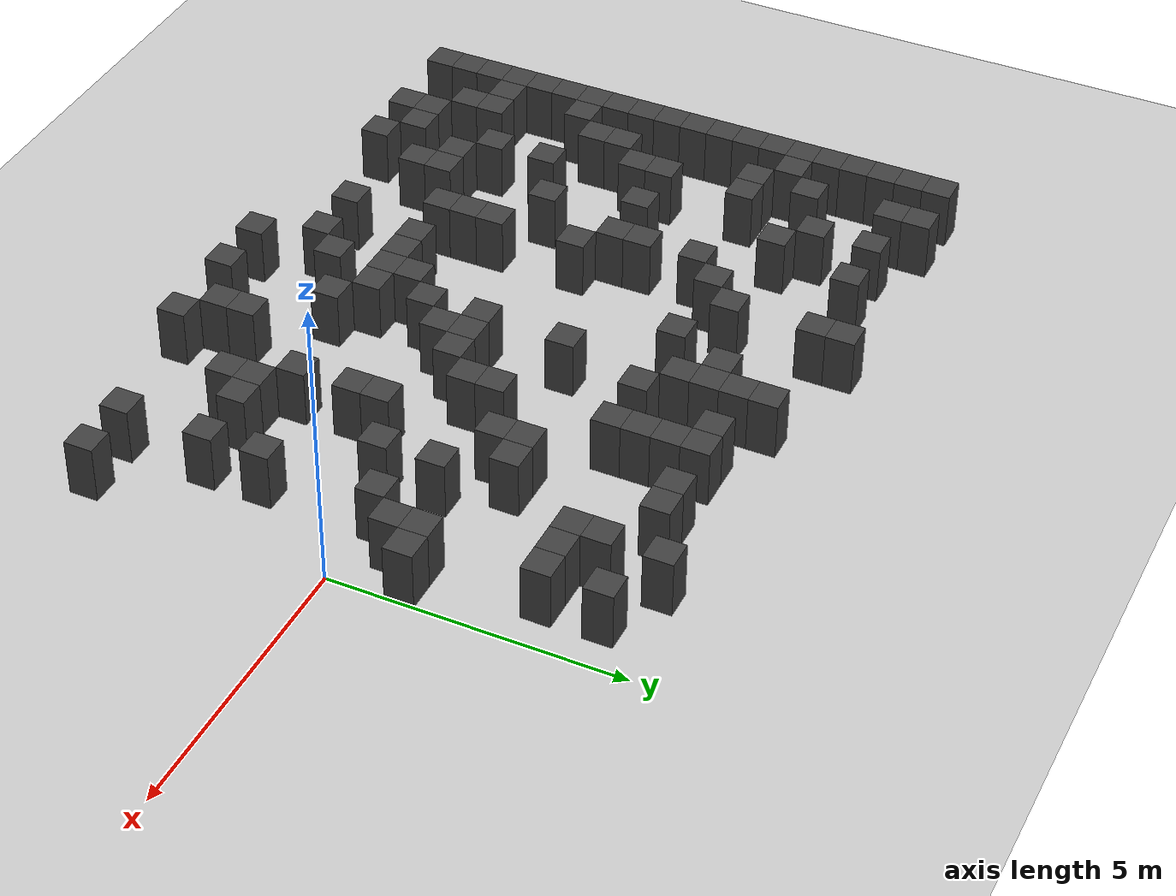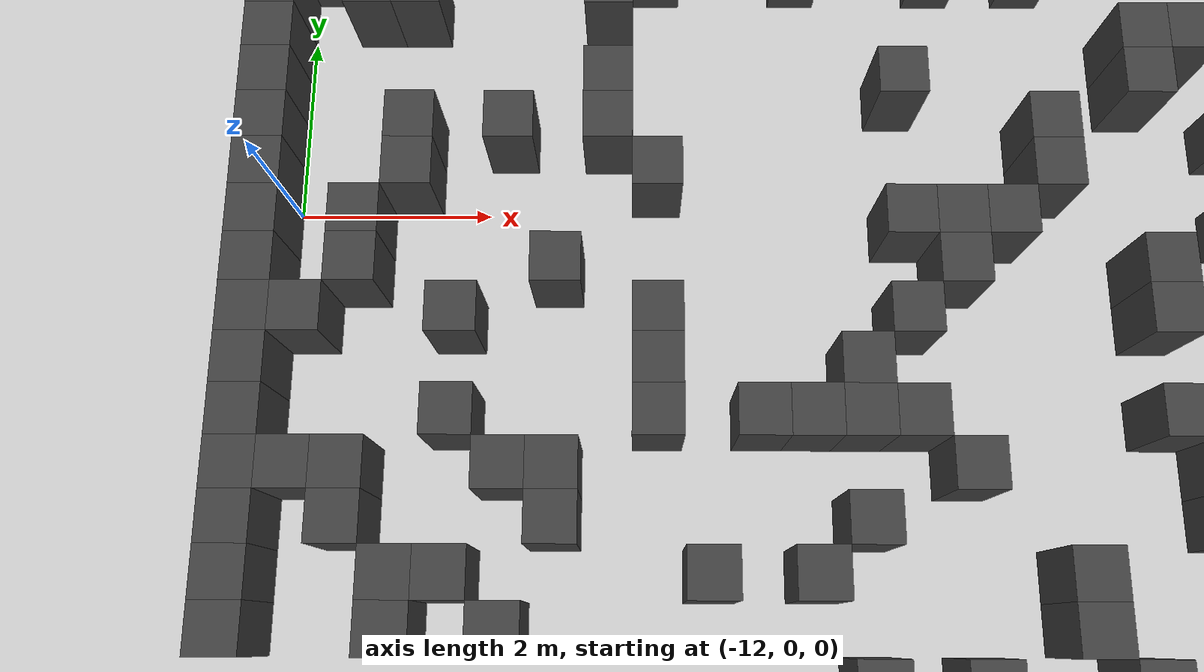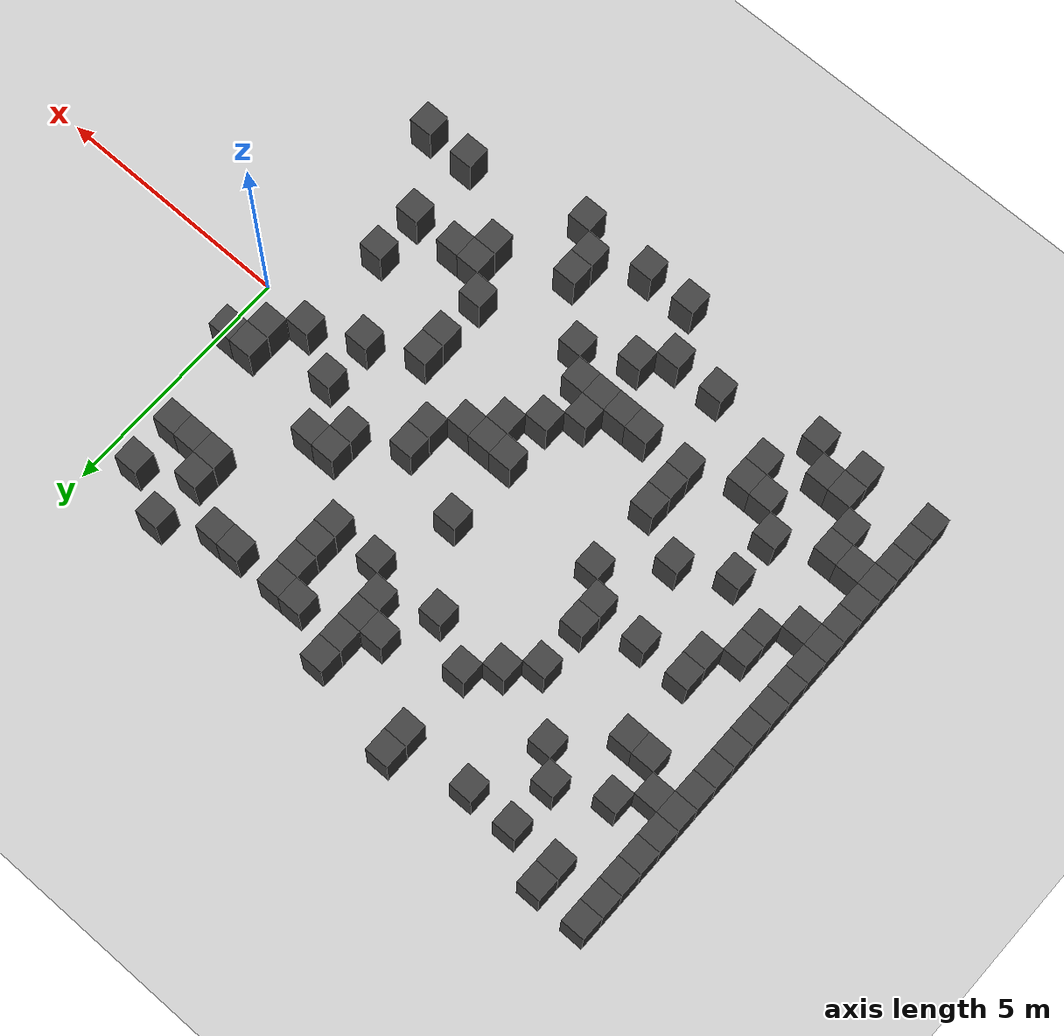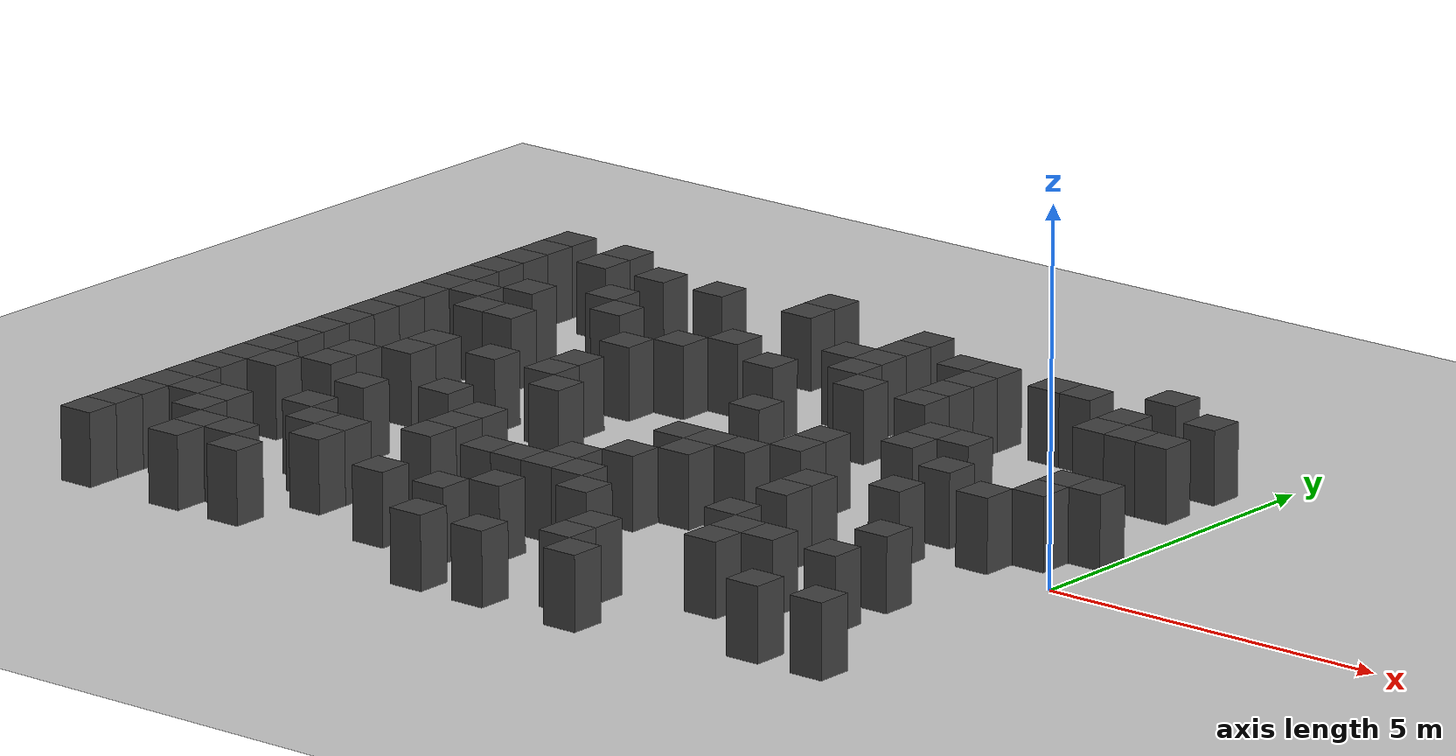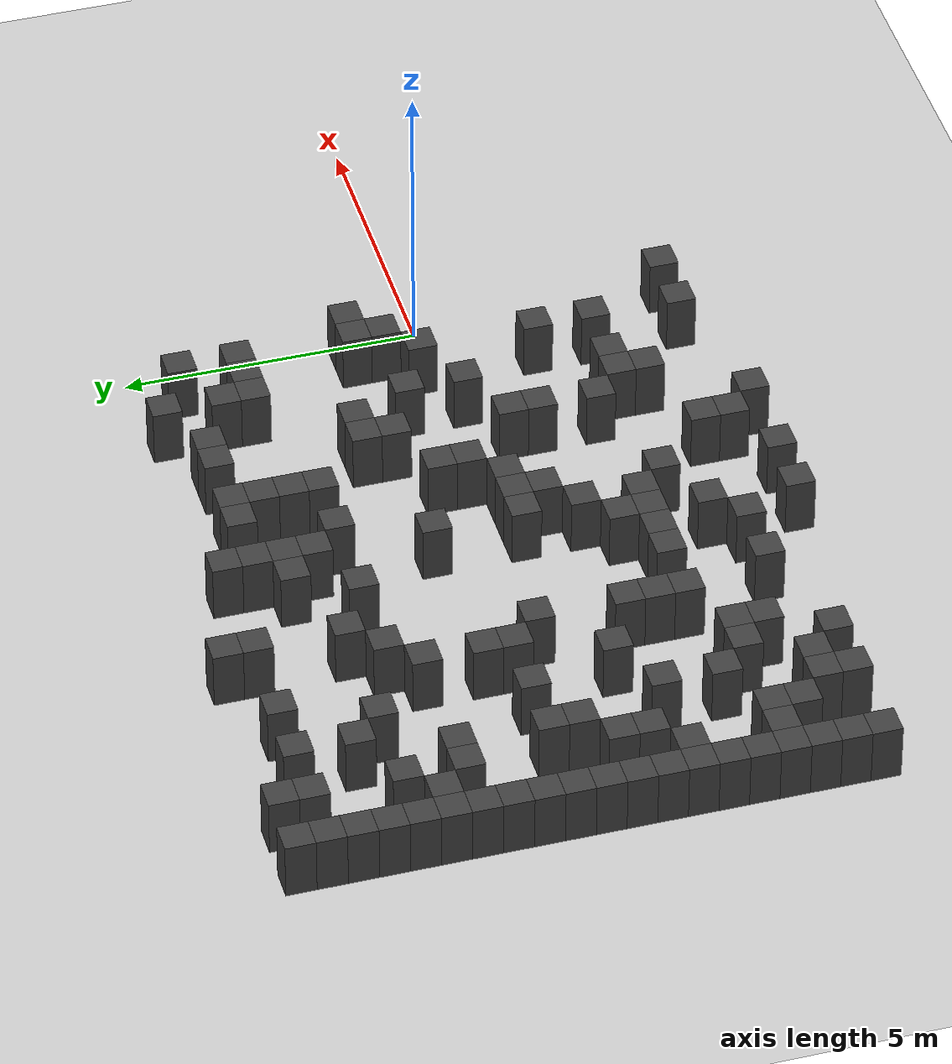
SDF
<sdf version="1.7">
 <world name="map_4822">
  <model name="ground_plane">
   <static>true</static>
   <link name="link">
    <collision name="collision">
     <geometry><plane><normal>0 0 1</normal><size>200 200</size></plane></geometry>
    </collision>
    <visual name="visual">
     <geometry><plane><normal>0 0 1</normal><size>200 200</size></plane></geometry>
     <material><ambient>0.8 0.8 0.8 1</ambient><diffuse>0.8 0.8 0.8 1</diffuse></material>
    </visual>
   </link>
  </model>
  <model name="maze_environment">
   <static>true</static>
   <link name="wall_216">
    <pose>-12.250 5.250 0.500 0 0 0</pose>
    <collision name="col"><geometry><box><size>0.5 0.5 1.0</size></box></geometry></collision>
    <visual name="vis">
     <geometry><box><size>0.5 0.5 1.0</size></box></geometry>
     <material><ambient>0.15 0.15 0.15 1</ambient><diffuse>0.25 0.25 0.25 1</diffuse></material>
    </visual>
   </link>
   <link name="wall_217">
    <pose>-11.250 5.250 0.500 0 0 0</pose>
    <collision name="col"><geometry><box><size>0.5 0.5 1.0</size></box></geometry></collision>
    <visual name="vis">
     <geometry><box><size>0.5 0.5 1.0</size></box></geometry>
     <material><ambient>0.15 0.15 0.15 1</ambient><diffuse>0.25 0.25 0.25 1</diffuse></material>
    </visual>
   </link>
   <link name="wall_218">
    <pose>-7.750 5.250 0.500 0 0 0</pose>
    <collision name="col"><geometry><box><size>0.5 0.5 1.0</size></box></geometry></collision>
    <visual name="vis">
     <geometry><box><size>0.5 0.5 1.0</size></box></geometry>
     <material><ambient>0.15 0.15 0.15 1</ambient><diffuse>0.25 0.25 0.25 1</diffuse></material>
    </visual>
   </link>
   <link name="wall_228">
    <pose>-12.250 4.750 0.500 0 0 0</pose>
    <collision name="col"><geometry><box><size>0.5 0.5 1.0</size></box></geometry></collision>
    <visual name="vis">
     <geometry><box><size>0.5 0.5 1.0</size></box></geometry>
     <material><ambient>0.15 0.15 0.15 1</ambient><diffuse>0.25 0.25 0.25 1</diffuse></material>
    </visual>
   </link>
   <link name="wall_229">
    <pose>-11.250 4.750 0.500 0 0 0</pose>
    <collision name="col"><geometry><box><size>0.5 0.5 1.0</size></box></geometry></collision>
    <visual name="vis">
     <geometry><box><size>0.5 0.5 1.0</size></box></geometry>
     <material><ambient>0.15 0.15 0.15 1</ambient><diffuse>0.25 0.25 0.25 1</diffuse></material>
    </visual>
   </link>
   <link name="wall_230">
    <pose>-10.250 4.750 0.500 0 0 0</pose>
    <collision name="col"><geometry><box><size>0.5 0.5 1.0</size></box></geometry></collision>
    <visual name="vis">
     <geometry><box><size>0.5 0.5 1.0</size></box></geometry>
     <material><ambient>0.15 0.15 0.15 1</ambient><diffuse>0.25 0.25 0.25 1</diffuse></material>
    </visual>
   </link>
   <link name="wall_231">
    <pose>-9.250 4.750 0.500 0 0 0</pose>
    <collision name="col"><geometry><box><size>0.5 0.5 1.0</size></box></geometry></collision>
    <visual name="vis">
     <geometry><box><size>0.5 0.5 1.0</size></box></geometry>
     <material><ambient>0.15 0.15 0.15 1</ambient><diffuse>0.25 0.25 0.25 1</diffuse></material>
    </visual>
   </link>
   <link name="wall_232">
    <pose>-7.750 4.750 0.500 0 0 0</pose>
    <collision name="col"><geometry><box><size>0.5 0.5 1.0</size></box></geometry></collision>
    <visual name="vis">
     <geometry><box><size>0.5 0.5 1.0</size></box></geometry>
     <material><ambient>0.15 0.15 0.15 1</ambient><diffuse>0.25 0.25 0.25 1</diffuse></material>
    </visual>
   </link>
   <link name="wall_233">
    <pose>-5.750 4.750 0.500 0 0 0</pose>
    <collision name="col"><geometry><box><size>0.5 0.5 1.0</size></box></geometry></collision>
    <visual name="vis">
     <geometry><box><size>0.5 0.5 1.0</size></box></geometry>
     <material><ambient>0.15 0.15 0.15 1</ambient><diffuse>0.25 0.25 0.25 1</diffuse></material>
    </visual>
   </link>
   <link name="wall_234">
    <pose>-1.750 4.750 0.500 0 0 0</pose>
    <collision name="col"><geometry><box><size>0.5 0.5 1.0</size></box></geometry></collision>
    <visual name="vis">
     <geometry><box><size>0.5 0.5 1.0</size></box></geometry>
     <material><ambient>0.15 0.15 0.15 1</ambient><diffuse>0.25 0.25 0.25 1</diffuse></material>
    </visual>
   </link>
   <link name="wall_244">
    <pose>-12.250 4.250 0.500 0 0 0</pose>
    <collision name="col"><geometry><box><size>0.5 0.5 1.0</size></box></geometry></collision>
    <visual name="vis">
     <geometry><box><size>0.5 0.5 1.0</size></box></geometry>
     <material><ambient>0.15 0.15 0.15 1</ambient><diffuse>0.25 0.25 0.25 1</diffuse></material>
    </visual>
   </link>
   <link name="wall_245">
    <pose>-5.750 4.250 0.500 0 0 0</pose>
    <collision name="col"><geometry><box><size>0.5 0.5 1.0</size></box></geometry></collision>
    <visual name="vis">
     <geometry><box><size>0.5 0.5 1.0</size></box></geometry>
     <material><ambient>0.15 0.15 0.15 1</ambient><diffuse>0.25 0.25 0.25 1</diffuse></material>
    </visual>
   </link>
   <link name="wall_246">
    <pose>-4.750 4.250 0.500 0 0 0</pose>
    <collision name="col"><geometry><box><size>0.5 0.5 1.0</size></box></geometry></collision>
    <visual name="vis">
     <geometry><box><size>0.5 0.5 1.0</size></box></geometry>
     <material><ambient>0.15 0.15 0.15 1</ambient><diffuse>0.25 0.25 0.25 1</diffuse></material>
    </visual>
   </link>
   <link name="wall_247">
    <pose>-4.250 4.250 0.500 0 0 0</pose>
    <collision name="col"><geometry><box><size>0.5 0.5 1.0</size></box></geometry></collision>
    <visual name="vis">
     <geometry><box><size>0.5 0.5 1.0</size></box></geometry>
     <material><ambient>0.15 0.15 0.15 1</ambient><diffuse>0.25 0.25 0.25 1</diffuse></material>
    </visual>
   </link>
   <link name="wall_248">
    <pose>-3.250 4.250 0.500 0 0 0</pose>
    <collision name="col"><geometry><box><size>0.5 0.5 1.0</size></box></geometry></collision>
    <visual name="vis">
     <geometry><box><size>0.5 0.5 1.0</size></box></geometry>
     <material><ambient>0.15 0.15 0.15 1</ambient><diffuse>0.25 0.25 0.25 1</diffuse></material>
    </visual>
   </link>
   <link name="wall_249">
    <pose>-2.750 4.250 0.500 0 0 0</pose>
    <collision name="col"><geometry><box><size>0.5 0.5 1.0</size></box></geometry></collision>
    <visual name="vis">
     <geometry><box><size>0.5 0.5 1.0</size></box></geometry>
     <material><ambient>0.15 0.15 0.15 1</ambient><diffuse>0.25 0.25 0.25 1</diffuse></material>
    </visual>
   </link>
   <link name="wall_250">
    <pose>-0.750 4.250 0.500 0 0 0</pose>
    <collision name="col"><geometry><box><size>0.5 0.5 1.0</size></box></geometry></collision>
    <visual name="vis">
     <geometry><box><size>0.5 0.5 1.0</size></box></geometry>
     <material><ambient>0.15 0.15 0.15 1</ambient><diffuse>0.25 0.25 0.25 1</diffuse></material>
    </visual>
   </link>
   <link name="wall_257">
    <pose>-12.250 3.750 0.500 0 0 0</pose>
    <collision name="col"><geometry><box><size>0.5 0.5 1.0</size></box></geometry></collision>
    <visual name="vis">
     <geometry><box><size>0.5 0.5 1.0</size></box></geometry>
     <material><ambient>0.15 0.15 0.15 1</ambient><diffuse>0.25 0.25 0.25 1</diffuse></material>
    </visual>
   </link>
   <link name="wall_258">
    <pose>-10.250 3.750 0.500 0 0 0</pose>
    <collision name="col"><geometry><box><size>0.5 0.5 1.0</size></box></geometry></collision>
    <visual name="vis">
     <geometry><box><size>0.5 0.5 1.0</size></box></geometry>
     <material><ambient>0.15 0.15 0.15 1</ambient><diffuse>0.25 0.25 0.25 1</diffuse></material>
    </visual>
   </link>
   <link name="wall_259">
    <pose>-6.250 3.750 0.500 0 0 0</pose>
    <collision name="col"><geometry><box><size>0.5 0.5 1.0</size></box></geometry></collision>
    <visual name="vis">
     <geometry><box><size>0.5 0.5 1.0</size></box></geometry>
     <material><ambient>0.15 0.15 0.15 1</ambient><diffuse>0.25 0.25 0.25 1</diffuse></material>
    </visual>
   </link>
   <link name="wall_260">
    <pose>-5.750 3.750 0.500 0 0 0</pose>
    <collision name="col"><geometry><box><size>0.5 0.5 1.0</size></box></geometry></collision>
    <visual name="vis">
     <geometry><box><size>0.5 0.5 1.0</size></box></geometry>
     <material><ambient>0.15 0.15 0.15 1</ambient><diffuse>0.25 0.25 0.25 1</diffuse></material>
    </visual>
   </link>
   <link name="wall_261">
    <pose>-4.250 3.750 0.500 0 0 0</pose>
    <collision name="col"><geometry><box><size>0.5 0.5 1.0</size></box></geometry></collision>
    <visual name="vis">
     <geometry><box><size>0.5 0.5 1.0</size></box></geometry>
     <material><ambient>0.15 0.15 0.15 1</ambient><diffuse>0.25 0.25 0.25 1</diffuse></material>
    </visual>
   </link>
   <link name="wall_262">
    <pose>-1.750 3.750 0.500 0 0 0</pose>
    <collision name="col"><geometry><box><size>0.5 0.5 1.0</size></box></geometry></collision>
    <visual name="vis">
     <geometry><box><size>0.5 0.5 1.0</size></box></geometry>
     <material><ambient>0.15 0.15 0.15 1</ambient><diffuse>0.25 0.25 0.25 1</diffuse></material>
    </visual>
   </link>
   <link name="wall_269">
    <pose>-12.250 3.250 0.500 0 0 0</pose>
    <collision name="col"><geometry><box><size>0.5 0.5 1.0</size></box></geometry></collision>
    <visual name="vis">
     <geometry><box><size>0.5 0.5 1.0</size></box></geometry>
     <material><ambient>0.15 0.15 0.15 1</ambient><diffuse>0.25 0.25 0.25 1</diffuse></material>
    </visual>
   </link>
   <link name="wall_270">
    <pose>-11.250 3.250 0.500 0 0 0</pose>
    <collision name="col"><geometry><box><size>0.5 0.5 1.0</size></box></geometry></collision>
    <visual name="vis">
     <geometry><box><size>0.5 0.5 1.0</size></box></geometry>
     <material><ambient>0.15 0.15 0.15 1</ambient><diffuse>0.25 0.25 0.25 1</diffuse></material>
    </visual>
   </link>
   <link name="wall_271">
    <pose>-9.750 3.250 0.500 0 0 0</pose>
    <collision name="col"><geometry><box><size>0.5 0.5 1.0</size></box></geometry></collision>
    <visual name="vis">
     <geometry><box><size>0.5 0.5 1.0</size></box></geometry>
     <material><ambient>0.15 0.15 0.15 1</ambient><diffuse>0.25 0.25 0.25 1</diffuse></material>
    </visual>
   </link>
   <link name="wall_272">
    <pose>-7.750 3.250 0.500 0 0 0</pose>
    <collision name="col"><geometry><box><size>0.5 0.5 1.0</size></box></geometry></collision>
    <visual name="vis">
     <geometry><box><size>0.5 0.5 1.0</size></box></geometry>
     <material><ambient>0.15 0.15 0.15 1</ambient><diffuse>0.25 0.25 0.25 1</diffuse></material>
    </visual>
   </link>
   <link name="wall_273">
    <pose>-5.750 3.250 0.500 0 0 0</pose>
    <collision name="col"><geometry><box><size>0.5 0.5 1.0</size></box></geometry></collision>
    <visual name="vis">
     <geometry><box><size>0.5 0.5 1.0</size></box></geometry>
     <material><ambient>0.15 0.15 0.15 1</ambient><diffuse>0.25 0.25 0.25 1</diffuse></material>
    </visual>
   </link>
   <link name="wall_274">
    <pose>-4.250 3.250 0.500 0 0 0</pose>
    <collision name="col"><geometry><box><size>0.5 0.5 1.0</size></box></geometry></collision>
    <visual name="vis">
     <geometry><box><size>0.5 0.5 1.0</size></box></geometry>
     <material><ambient>0.15 0.15 0.15 1</ambient><diffuse>0.25 0.25 0.25 1</diffuse></material>
    </visual>
   </link>
   <link name="wall_275">
    <pose>-1.750 3.250 0.500 0 0 0</pose>
    <collision name="col"><geometry><box><size>0.5 0.5 1.0</size></box></geometry></collision>
    <visual name="vis">
     <geometry><box><size>0.5 0.5 1.0</size></box></geometry>
     <material><ambient>0.15 0.15 0.15 1</ambient><diffuse>0.25 0.25 0.25 1</diffuse></material>
    </visual>
   </link>
   <link name="wall_276">
    <pose>-1.250 3.250 0.500 0 0 0</pose>
    <collision name="col"><geometry><box><size>0.5 0.5 1.0</size></box></geometry></collision>
    <visual name="vis">
     <geometry><box><size>0.5 0.5 1.0</size></box></geometry>
     <material><ambient>0.15 0.15 0.15 1</ambient><diffuse>0.25 0.25 0.25 1</diffuse></material>
    </visual>
   </link>
   <link name="wall_277">
    <pose>-0.750 3.250 0.500 0 0 0</pose>
    <collision name="col"><geometry><box><size>0.5 0.5 1.0</size></box></geometry></collision>
    <visual name="vis">
     <geometry><box><size>0.5 0.5 1.0</size></box></geometry>
     <material><ambient>0.15 0.15 0.15 1</ambient><diffuse>0.25 0.25 0.25 1</diffuse></material>
    </visual>
   </link>
   <link name="wall_286">
    <pose>-12.250 2.750 0.500 0 0 0</pose>
    <collision name="col"><geometry><box><size>0.5 0.5 1.0</size></box></geometry></collision>
    <visual name="vis">
     <geometry><box><size>0.5 0.5 1.0</size></box></geometry>
     <material><ambient>0.15 0.15 0.15 1</ambient><diffuse>0.25 0.25 0.25 1</diffuse></material>
    </visual>
   </link>
   <link name="wall_287">
    <pose>-11.750 2.750 0.500 0 0 0</pose>
    <collision name="col"><geometry><box><size>0.5 0.5 1.0</size></box></geometry></collision>
    <visual name="vis">
     <geometry><box><size>0.5 0.5 1.0</size></box></geometry>
     <material><ambient>0.15 0.15 0.15 1</ambient><diffuse>0.25 0.25 0.25 1</diffuse></material>
    </visual>
   </link>
   <link name="wall_288">
    <pose>-8.250 2.750 0.500 0 0 0</pose>
    <collision name="col"><geometry><box><size>0.5 0.5 1.0</size></box></geometry></collision>
    <visual name="vis">
     <geometry><box><size>0.5 0.5 1.0</size></box></geometry>
     <material><ambient>0.15 0.15 0.15 1</ambient><diffuse>0.25 0.25 0.25 1</diffuse></material>
    </visual>
   </link>
   <link name="wall_289">
    <pose>-6.750 2.750 0.500 0 0 0</pose>
    <collision name="col"><geometry><box><size>0.5 0.5 1.0</size></box></geometry></collision>
    <visual name="vis">
     <geometry><box><size>0.5 0.5 1.0</size></box></geometry>
     <material><ambient>0.15 0.15 0.15 1</ambient><diffuse>0.25 0.25 0.25 1</diffuse></material>
    </visual>
   </link>
   <link name="wall_290">
    <pose>-5.250 2.750 0.500 0 0 0</pose>
    <collision name="col"><geometry><box><size>0.5 0.5 1.0</size></box></geometry></collision>
    <visual name="vis">
     <geometry><box><size>0.5 0.5 1.0</size></box></geometry>
     <material><ambient>0.15 0.15 0.15 1</ambient><diffuse>0.25 0.25 0.25 1</diffuse></material>
    </visual>
   </link>
   <link name="wall_291">
    <pose>-4.250 2.750 0.500 0 0 0</pose>
    <collision name="col"><geometry><box><size>0.5 0.5 1.0</size></box></geometry></collision>
    <visual name="vis">
     <geometry><box><size>0.5 0.5 1.0</size></box></geometry>
     <material><ambient>0.15 0.15 0.15 1</ambient><diffuse>0.25 0.25 0.25 1</diffuse></material>
    </visual>
   </link>
   <link name="wall_297">
    <pose>-12.250 2.250 0.500 0 0 0</pose>
    <collision name="col"><geometry><box><size>0.5 0.5 1.0</size></box></geometry></collision>
    <visual name="vis">
     <geometry><box><size>0.5 0.5 1.0</size></box></geometry>
     <material><ambient>0.15 0.15 0.15 1</ambient><diffuse>0.25 0.25 0.25 1</diffuse></material>
    </visual>
   </link>
   <link name="wall_298">
    <pose>-11.250 2.250 0.500 0 0 0</pose>
    <collision name="col"><geometry><box><size>0.5 0.5 1.0</size></box></geometry></collision>
    <visual name="vis">
     <geometry><box><size>0.5 0.5 1.0</size></box></geometry>
     <material><ambient>0.15 0.15 0.15 1</ambient><diffuse>0.25 0.25 0.25 1</diffuse></material>
    </visual>
   </link>
   <link name="wall_299">
    <pose>-10.750 2.250 0.500 0 0 0</pose>
    <collision name="col"><geometry><box><size>0.5 0.5 1.0</size></box></geometry></collision>
    <visual name="vis">
     <geometry><box><size>0.5 0.5 1.0</size></box></geometry>
     <material><ambient>0.15 0.15 0.15 1</ambient><diffuse>0.25 0.25 0.25 1</diffuse></material>
    </visual>
   </link>
   <link name="wall_300">
    <pose>-8.750 2.250 0.500 0 0 0</pose>
    <collision name="col"><geometry><box><size>0.5 0.5 1.0</size></box></geometry></collision>
    <visual name="vis">
     <geometry><box><size>0.5 0.5 1.0</size></box></geometry>
     <material><ambient>0.15 0.15 0.15 1</ambient><diffuse>0.25 0.25 0.25 1</diffuse></material>
    </visual>
   </link>
   <link name="wall_305">
    <pose>-12.250 1.750 0.500 0 0 0</pose>
    <collision name="col"><geometry><box><size>0.5 0.5 1.0</size></box></geometry></collision>
    <visual name="vis">
     <geometry><box><size>0.5 0.5 1.0</size></box></geometry>
     <material><ambient>0.15 0.15 0.15 1</ambient><diffuse>0.25 0.25 0.25 1</diffuse></material>
    </visual>
   </link>
   <link name="wall_306">
    <pose>-3.250 1.750 0.500 0 0 0</pose>
    <collision name="col"><geometry><box><size>0.5 0.5 1.0</size></box></geometry></collision>
    <visual name="vis">
     <geometry><box><size>0.5 0.5 1.0</size></box></geometry>
     <material><ambient>0.15 0.15 0.15 1</ambient><diffuse>0.25 0.25 0.25 1</diffuse></material>
    </visual>
   </link>
   <link name="wall_307">
    <pose>-2.750 1.750 0.500 0 0 0</pose>
    <collision name="col"><geometry><box><size>0.5 0.5 1.0</size></box></geometry></collision>
    <visual name="vis">
     <geometry><box><size>0.5 0.5 1.0</size></box></geometry>
     <material><ambient>0.15 0.15 0.15 1</ambient><diffuse>0.25 0.25 0.25 1</diffuse></material>
    </visual>
   </link>
   <link name="wall_314">
    <pose>-12.250 1.250 0.500 0 0 0</pose>
    <collision name="col"><geometry><box><size>0.5 0.5 1.0</size></box></geometry></collision>
    <visual name="vis">
     <geometry><box><size>0.5 0.5 1.0</size></box></geometry>
     <material><ambient>0.15 0.15 0.15 1</ambient><diffuse>0.25 0.25 0.25 1</diffuse></material>
    </visual>
   </link>
   <link name="wall_315">
    <pose>-8.750 1.250 0.500 0 0 0</pose>
    <collision name="col"><geometry><box><size>0.5 0.5 1.0</size></box></geometry></collision>
    <visual name="vis">
     <geometry><box><size>0.5 0.5 1.0</size></box></geometry>
     <material><ambient>0.15 0.15 0.15 1</ambient><diffuse>0.25 0.25 0.25 1</diffuse></material>
    </visual>
   </link>
   <link name="wall_316">
    <pose>-5.750 1.250 0.500 0 0 0</pose>
    <collision name="col"><geometry><box><size>0.5 0.5 1.0</size></box></geometry></collision>
    <visual name="vis">
     <geometry><box><size>0.5 0.5 1.0</size></box></geometry>
     <material><ambient>0.15 0.15 0.15 1</ambient><diffuse>0.25 0.25 0.25 1</diffuse></material>
    </visual>
   </link>
   <link name="wall_317">
    <pose>-3.250 1.250 0.500 0 0 0</pose>
    <collision name="col"><geometry><box><size>0.5 0.5 1.0</size></box></geometry></collision>
    <visual name="vis">
     <geometry><box><size>0.5 0.5 1.0</size></box></geometry>
     <material><ambient>0.15 0.15 0.15 1</ambient><diffuse>0.25 0.25 0.25 1</diffuse></material>
    </visual>
   </link>
   <link name="wall_318">
    <pose>-0.750 1.250 0.500 0 0 0</pose>
    <collision name="col"><geometry><box><size>0.5 0.5 1.0</size></box></geometry></collision>
    <visual name="vis">
     <geometry><box><size>0.5 0.5 1.0</size></box></geometry>
     <material><ambient>0.15 0.15 0.15 1</ambient><diffuse>0.25 0.25 0.25 1</diffuse></material>
    </visual>
   </link>
   <link name="wall_319">
    <pose>-0.250 1.250 0.500 0 0 0</pose>
    <collision name="col"><geometry><box><size>0.5 0.5 1.0</size></box></geometry></collision>
    <visual name="vis">
     <geometry><box><size>0.5 0.5 1.0</size></box></geometry>
     <material><ambient>0.15 0.15 0.15 1</ambient><diffuse>0.25 0.25 0.25 1</diffuse></material>
    </visual>
   </link>
   <link name="wall_324">
    <pose>-12.250 0.750 0.500 0 0 0</pose>
    <collision name="col"><geometry><box><size>0.5 0.5 1.0</size></box></geometry></collision>
    <visual name="vis">
     <geometry><box><size>0.5 0.5 1.0</size></box></geometry>
     <material><ambient>0.15 0.15 0.15 1</ambient><diffuse>0.25 0.25 0.25 1</diffuse></material>
    </visual>
   </link>
   <link name="wall_325">
    <pose>-10.750 0.750 0.500 0 0 0</pose>
    <collision name="col"><geometry><box><size>0.5 0.5 1.0</size></box></geometry></collision>
    <visual name="vis">
     <geometry><box><size>0.5 0.5 1.0</size></box></geometry>
     <material><ambient>0.15 0.15 0.15 1</ambient><diffuse>0.25 0.25 0.25 1</diffuse></material>
    </visual>
   </link>
   <link name="wall_326">
    <pose>-9.750 0.750 0.500 0 0 0</pose>
    <collision name="col"><geometry><box><size>0.5 0.5 1.0</size></box></geometry></collision>
    <visual name="vis">
     <geometry><box><size>0.5 0.5 1.0</size></box></geometry>
     <material><ambient>0.15 0.15 0.15 1</ambient><diffuse>0.25 0.25 0.25 1</diffuse></material>
    </visual>
   </link>
   <link name="wall_327">
    <pose>-8.750 0.750 0.500 0 0 0</pose>
    <collision name="col"><geometry><box><size>0.5 0.5 1.0</size></box></geometry></collision>
    <visual name="vis">
     <geometry><box><size>0.5 0.5 1.0</size></box></geometry>
     <material><ambient>0.15 0.15 0.15 1</ambient><diffuse>0.25 0.25 0.25 1</diffuse></material>
    </visual>
   </link>
   <link name="wall_328">
    <pose>-4.250 0.750 0.500 0 0 0</pose>
    <collision name="col"><geometry><box><size>0.5 0.5 1.0</size></box></geometry></collision>
    <visual name="vis">
     <geometry><box><size>0.5 0.5 1.0</size></box></geometry>
     <material><ambient>0.15 0.15 0.15 1</ambient><diffuse>0.25 0.25 0.25 1</diffuse></material>
    </visual>
   </link>
   <link name="wall_329">
    <pose>-2.250 0.750 0.500 0 0 0</pose>
    <collision name="col"><geometry><box><size>0.5 0.5 1.0</size></box></geometry></collision>
    <visual name="vis">
     <geometry><box><size>0.5 0.5 1.0</size></box></geometry>
     <material><ambient>0.15 0.15 0.15 1</ambient><diffuse>0.25 0.25 0.25 1</diffuse></material>
    </visual>
   </link>
   <link name="wall_330">
    <pose>-0.750 0.750 0.500 0 0 0</pose>
    <collision name="col"><geometry><box><size>0.5 0.5 1.0</size></box></geometry></collision>
    <visual name="vis">
     <geometry><box><size>0.5 0.5 1.0</size></box></geometry>
     <material><ambient>0.15 0.15 0.15 1</ambient><diffuse>0.25 0.25 0.25 1</diffuse></material>
    </visual>
   </link>
   <link name="wall_337">
    <pose>-12.250 0.250 0.500 0 0 0</pose>
    <collision name="col"><geometry><box><size>0.5 0.5 1.0</size></box></geometry></collision>
    <visual name="vis">
     <geometry><box><size>0.5 0.5 1.0</size></box></geometry>
     <material><ambient>0.15 0.15 0.15 1</ambient><diffuse>0.25 0.25 0.25 1</diffuse></material>
    </visual>
   </link>
   <link name="wall_338">
    <pose>-10.750 0.250 0.500 0 0 0</pose>
    <collision name="col"><geometry><box><size>0.5 0.5 1.0</size></box></geometry></collision>
    <visual name="vis">
     <geometry><box><size>0.5 0.5 1.0</size></box></geometry>
     <material><ambient>0.15 0.15 0.15 1</ambient><diffuse>0.25 0.25 0.25 1</diffuse></material>
    </visual>
   </link>
   <link name="wall_339">
    <pose>-8.250 0.250 0.500 0 0 0</pose>
    <collision name="col"><geometry><box><size>0.5 0.5 1.0</size></box></geometry></collision>
    <visual name="vis">
     <geometry><box><size>0.5 0.5 1.0</size></box></geometry>
     <material><ambient>0.15 0.15 0.15 1</ambient><diffuse>0.25 0.25 0.25 1</diffuse></material>
    </visual>
   </link>
   <link name="wall_340">
    <pose>-4.250 0.250 0.500 0 0 0</pose>
    <collision name="col"><geometry><box><size>0.5 0.5 1.0</size></box></geometry></collision>
    <visual name="vis">
     <geometry><box><size>0.5 0.5 1.0</size></box></geometry>
     <material><ambient>0.15 0.15 0.15 1</ambient><diffuse>0.25 0.25 0.25 1</diffuse></material>
    </visual>
   </link>
   <link name="wall_341">
    <pose>-1.250 0.250 0.500 0 0 0</pose>
    <collision name="col"><geometry><box><size>0.5 0.5 1.0</size></box></geometry></collision>
    <visual name="vis">
     <geometry><box><size>0.5 0.5 1.0</size></box></geometry>
     <material><ambient>0.15 0.15 0.15 1</ambient><diffuse>0.25 0.25 0.25 1</diffuse></material>
    </visual>
   </link>
   <link name="wall_351">
    <pose>-12.250 -0.250 0.500 0 0 0</pose>
    <collision name="col"><geometry><box><size>0.5 0.5 1.0</size></box></geometry></collision>
    <visual name="vis">
     <geometry><box><size>0.5 0.5 1.0</size></box></geometry>
     <material><ambient>0.15 0.15 0.15 1</ambient><diffuse>0.25 0.25 0.25 1</diffuse></material>
    </visual>
   </link>
   <link name="wall_352">
    <pose>-11.250 -0.250 0.500 0 0 0</pose>
    <collision name="col"><geometry><box><size>0.5 0.5 1.0</size></box></geometry></collision>
    <visual name="vis">
     <geometry><box><size>0.5 0.5 1.0</size></box></geometry>
     <material><ambient>0.15 0.15 0.15 1</ambient><diffuse>0.25 0.25 0.25 1</diffuse></material>
    </visual>
   </link>
   <link name="wall_353">
    <pose>-5.750 -0.250 0.500 0 0 0</pose>
    <collision name="col"><geometry><box><size>0.5 0.5 1.0</size></box></geometry></collision>
    <visual name="vis">
     <geometry><box><size>0.5 0.5 1.0</size></box></geometry>
     <material><ambient>0.15 0.15 0.15 1</ambient><diffuse>0.25 0.25 0.25 1</diffuse></material>
    </visual>
   </link>
   <link name="wall_354">
    <pose>-5.250 -0.250 0.500 0 0 0</pose>
    <collision name="col"><geometry><box><size>0.5 0.5 1.0</size></box></geometry></collision>
    <visual name="vis">
     <geometry><box><size>0.5 0.5 1.0</size></box></geometry>
     <material><ambient>0.15 0.15 0.15 1</ambient><diffuse>0.25 0.25 0.25 1</diffuse></material>
    </visual>
   </link>
   <link name="wall_355">
    <pose>-4.750 -0.250 0.500 0 0 0</pose>
    <collision name="col"><geometry><box><size>0.5 0.5 1.0</size></box></geometry></collision>
    <visual name="vis">
     <geometry><box><size>0.5 0.5 1.0</size></box></geometry>
     <material><ambient>0.15 0.15 0.15 1</ambient><diffuse>0.25 0.25 0.25 1</diffuse></material>
    </visual>
   </link>
   <link name="wall_356">
    <pose>-2.250 -0.250 0.500 0 0 0</pose>
    <collision name="col"><geometry><box><size>0.5 0.5 1.0</size></box></geometry></collision>
    <visual name="vis">
     <geometry><box><size>0.5 0.5 1.0</size></box></geometry>
     <material><ambient>0.15 0.15 0.15 1</ambient><diffuse>0.25 0.25 0.25 1</diffuse></material>
    </visual>
   </link>
   <link name="wall_363">
    <pose>-12.250 -0.750 0.500 0 0 0</pose>
    <collision name="col"><geometry><box><size>0.5 0.5 1.0</size></box></geometry></collision>
    <visual name="vis">
     <geometry><box><size>0.5 0.5 1.0</size></box></geometry>
     <material><ambient>0.15 0.15 0.15 1</ambient><diffuse>0.25 0.25 0.25 1</diffuse></material>
    </visual>
   </link>
   <link name="wall_364">
    <pose>-11.250 -0.750 0.500 0 0 0</pose>
    <collision name="col"><geometry><box><size>0.5 0.5 1.0</size></box></geometry></collision>
    <visual name="vis">
     <geometry><box><size>0.5 0.5 1.0</size></box></geometry>
     <material><ambient>0.15 0.15 0.15 1</ambient><diffuse>0.25 0.25 0.25 1</diffuse></material>
    </visual>
   </link>
   <link name="wall_365">
    <pose>-9.250 -0.750 0.500 0 0 0</pose>
    <collision name="col"><geometry><box><size>0.5 0.5 1.0</size></box></geometry></collision>
    <visual name="vis">
     <geometry><box><size>0.5 0.5 1.0</size></box></geometry>
     <material><ambient>0.15 0.15 0.15 1</ambient><diffuse>0.25 0.25 0.25 1</diffuse></material>
    </visual>
   </link>
   <link name="wall_366">
    <pose>-5.250 -0.750 0.500 0 0 0</pose>
    <collision name="col"><geometry><box><size>0.5 0.5 1.0</size></box></geometry></collision>
    <visual name="vis">
     <geometry><box><size>0.5 0.5 1.0</size></box></geometry>
     <material><ambient>0.15 0.15 0.15 1</ambient><diffuse>0.25 0.25 0.25 1</diffuse></material>
    </visual>
   </link>
   <link name="wall_367">
    <pose>-3.250 -0.750 0.500 0 0 0</pose>
    <collision name="col"><geometry><box><size>0.5 0.5 1.0</size></box></geometry></collision>
    <visual name="vis">
     <geometry><box><size>0.5 0.5 1.0</size></box></geometry>
     <material><ambient>0.15 0.15 0.15 1</ambient><diffuse>0.25 0.25 0.25 1</diffuse></material>
    </visual>
   </link>
   <link name="wall_377">
    <pose>-12.250 -1.250 0.500 0 0 0</pose>
    <collision name="col"><geometry><box><size>0.5 0.5 1.0</size></box></geometry></collision>
    <visual name="vis">
     <geometry><box><size>0.5 0.5 1.0</size></box></geometry>
     <material><ambient>0.15 0.15 0.15 1</ambient><diffuse>0.25 0.25 0.25 1</diffuse></material>
    </visual>
   </link>
   <link name="wall_378">
    <pose>-11.750 -1.250 0.500 0 0 0</pose>
    <collision name="col"><geometry><box><size>0.5 0.5 1.0</size></box></geometry></collision>
    <visual name="vis">
     <geometry><box><size>0.5 0.5 1.0</size></box></geometry>
     <material><ambient>0.15 0.15 0.15 1</ambient><diffuse>0.25 0.25 0.25 1</diffuse></material>
    </visual>
   </link>
   <link name="wall_379">
    <pose>-10.250 -1.250 0.500 0 0 0</pose>
    <collision name="col"><geometry><box><size>0.5 0.5 1.0</size></box></geometry></collision>
    <visual name="vis">
     <geometry><box><size>0.5 0.5 1.0</size></box></geometry>
     <material><ambient>0.15 0.15 0.15 1</ambient><diffuse>0.25 0.25 0.25 1</diffuse></material>
    </visual>
   </link>
   <link name="wall_380">
    <pose>-8.250 -1.250 0.500 0 0 0</pose>
    <collision name="col"><geometry><box><size>0.5 0.5 1.0</size></box></geometry></collision>
    <visual name="vis">
     <geometry><box><size>0.5 0.5 1.0</size></box></geometry>
     <material><ambient>0.15 0.15 0.15 1</ambient><diffuse>0.25 0.25 0.25 1</diffuse></material>
    </visual>
   </link>
   <link name="wall_381">
    <pose>-5.750 -1.250 0.500 0 0 0</pose>
    <collision name="col"><geometry><box><size>0.5 0.5 1.0</size></box></geometry></collision>
    <visual name="vis">
     <geometry><box><size>0.5 0.5 1.0</size></box></geometry>
     <material><ambient>0.15 0.15 0.15 1</ambient><diffuse>0.25 0.25 0.25 1</diffuse></material>
    </visual>
   </link>
   <link name="wall_382">
    <pose>-3.250 -1.250 0.500 0 0 0</pose>
    <collision name="col"><geometry><box><size>0.5 0.5 1.0</size></box></geometry></collision>
    <visual name="vis">
     <geometry><box><size>0.5 0.5 1.0</size></box></geometry>
     <material><ambient>0.15 0.15 0.15 1</ambient><diffuse>0.25 0.25 0.25 1</diffuse></material>
    </visual>
   </link>
   <link name="wall_394">
    <pose>-12.250 -1.750 0.500 0 0 0</pose>
    <collision name="col"><geometry><box><size>0.5 0.5 1.0</size></box></geometry></collision>
    <visual name="vis">
     <geometry><box><size>0.5 0.5 1.0</size></box></geometry>
     <material><ambient>0.15 0.15 0.15 1</ambient><diffuse>0.25 0.25 0.25 1</diffuse></material>
    </visual>
   </link>
   <link name="wall_395">
    <pose>-8.250 -1.750 0.500 0 0 0</pose>
    <collision name="col"><geometry><box><size>0.5 0.5 1.0</size></box></geometry></collision>
    <visual name="vis">
     <geometry><box><size>0.5 0.5 1.0</size></box></geometry>
     <material><ambient>0.15 0.15 0.15 1</ambient><diffuse>0.25 0.25 0.25 1</diffuse></material>
    </visual>
   </link>
   <link name="wall_396">
    <pose>-6.250 -1.750 0.500 0 0 0</pose>
    <collision name="col"><geometry><box><size>0.5 0.5 1.0</size></box></geometry></collision>
    <visual name="vis">
     <geometry><box><size>0.5 0.5 1.0</size></box></geometry>
     <material><ambient>0.15 0.15 0.15 1</ambient><diffuse>0.25 0.25 0.25 1</diffuse></material>
    </visual>
   </link>
   <link name="wall_397">
    <pose>-1.250 -1.750 0.500 0 0 0</pose>
    <collision name="col"><geometry><box><size>0.5 0.5 1.0</size></box></geometry></collision>
    <visual name="vis">
     <geometry><box><size>0.5 0.5 1.0</size></box></geometry>
     <material><ambient>0.15 0.15 0.15 1</ambient><diffuse>0.25 0.25 0.25 1</diffuse></material>
    </visual>
   </link>
   <link name="wall_406">
    <pose>-12.250 -2.250 0.500 0 0 0</pose>
    <collision name="col"><geometry><box><size>0.5 0.5 1.0</size></box></geometry></collision>
    <visual name="vis">
     <geometry><box><size>0.5 0.5 1.0</size></box></geometry>
     <material><ambient>0.15 0.15 0.15 1</ambient><diffuse>0.25 0.25 0.25 1</diffuse></material>
    </visual>
   </link>
   <link name="wall_407">
    <pose>-10.250 -2.250 0.500 0 0 0</pose>
    <collision name="col"><geometry><box><size>0.5 0.5 1.0</size></box></geometry></collision>
    <visual name="vis">
     <geometry><box><size>0.5 0.5 1.0</size></box></geometry>
     <material><ambient>0.15 0.15 0.15 1</ambient><diffuse>0.25 0.25 0.25 1</diffuse></material>
    </visual>
   </link>
   <link name="wall_408">
    <pose>-8.250 -2.250 0.500 0 0 0</pose>
    <collision name="col"><geometry><box><size>0.5 0.5 1.0</size></box></geometry></collision>
    <visual name="vis">
     <geometry><box><size>0.5 0.5 1.0</size></box></geometry>
     <material><ambient>0.15 0.15 0.15 1</ambient><diffuse>0.25 0.25 0.25 1</diffuse></material>
    </visual>
   </link>
   <link name="wall_409">
    <pose>-7.250 -2.250 0.500 0 0 0</pose>
    <collision name="col"><geometry><box><size>0.5 0.5 1.0</size></box></geometry></collision>
    <visual name="vis">
     <geometry><box><size>0.5 0.5 1.0</size></box></geometry>
     <material><ambient>0.15 0.15 0.15 1</ambient><diffuse>0.25 0.25 0.25 1</diffuse></material>
    </visual>
   </link>
   <link name="wall_410">
    <pose>-6.750 -2.250 0.500 0 0 0</pose>
    <collision name="col"><geometry><box><size>0.5 0.5 1.0</size></box></geometry></collision>
    <visual name="vis">
     <geometry><box><size>0.5 0.5 1.0</size></box></geometry>
     <material><ambient>0.15 0.15 0.15 1</ambient><diffuse>0.25 0.25 0.25 1</diffuse></material>
    </visual>
   </link>
   <link name="wall_411">
    <pose>-6.250 -2.250 0.500 0 0 0</pose>
    <collision name="col"><geometry><box><size>0.5 0.5 1.0</size></box></geometry></collision>
    <visual name="vis">
     <geometry><box><size>0.5 0.5 1.0</size></box></geometry>
     <material><ambient>0.15 0.15 0.15 1</ambient><diffuse>0.25 0.25 0.25 1</diffuse></material>
    </visual>
   </link>
   <link name="wall_412">
    <pose>-5.750 -2.250 0.500 0 0 0</pose>
    <collision name="col"><geometry><box><size>0.5 0.5 1.0</size></box></geometry></collision>
    <visual name="vis">
     <geometry><box><size>0.5 0.5 1.0</size></box></geometry>
     <material><ambient>0.15 0.15 0.15 1</ambient><diffuse>0.25 0.25 0.25 1</diffuse></material>
    </visual>
   </link>
   <link name="wall_413">
    <pose>-3.250 -2.250 0.500 0 0 0</pose>
    <collision name="col"><geometry><box><size>0.5 0.5 1.0</size></box></geometry></collision>
    <visual name="vis">
     <geometry><box><size>0.5 0.5 1.0</size></box></geometry>
     <material><ambient>0.15 0.15 0.15 1</ambient><diffuse>0.25 0.25 0.25 1</diffuse></material>
    </visual>
   </link>
   <link name="wall_423">
    <pose>-12.250 -2.750 0.500 0 0 0</pose>
    <collision name="col"><geometry><box><size>0.5 0.5 1.0</size></box></geometry></collision>
    <visual name="vis">
     <geometry><box><size>0.5 0.5 1.0</size></box></geometry>
     <material><ambient>0.15 0.15 0.15 1</ambient><diffuse>0.25 0.25 0.25 1</diffuse></material>
    </visual>
   </link>
   <link name="wall_424">
    <pose>-11.750 -2.750 0.500 0 0 0</pose>
    <collision name="col"><geometry><box><size>0.5 0.5 1.0</size></box></geometry></collision>
    <visual name="vis">
     <geometry><box><size>0.5 0.5 1.0</size></box></geometry>
     <material><ambient>0.15 0.15 0.15 1</ambient><diffuse>0.25 0.25 0.25 1</diffuse></material>
    </visual>
   </link>
   <link name="wall_425">
    <pose>-11.250 -2.750 0.500 0 0 0</pose>
    <collision name="col"><geometry><box><size>0.5 0.5 1.0</size></box></geometry></collision>
    <visual name="vis">
     <geometry><box><size>0.5 0.5 1.0</size></box></geometry>
     <material><ambient>0.15 0.15 0.15 1</ambient><diffuse>0.25 0.25 0.25 1</diffuse></material>
    </visual>
   </link>
   <link name="wall_426">
    <pose>-9.750 -2.750 0.500 0 0 0</pose>
    <collision name="col"><geometry><box><size>0.5 0.5 1.0</size></box></geometry></collision>
    <visual name="vis">
     <geometry><box><size>0.5 0.5 1.0</size></box></geometry>
     <material><ambient>0.15 0.15 0.15 1</ambient><diffuse>0.25 0.25 0.25 1</diffuse></material>
    </visual>
   </link>
   <link name="wall_427">
    <pose>-9.250 -2.750 0.500 0 0 0</pose>
    <collision name="col"><geometry><box><size>0.5 0.5 1.0</size></box></geometry></collision>
    <visual name="vis">
     <geometry><box><size>0.5 0.5 1.0</size></box></geometry>
     <material><ambient>0.15 0.15 0.15 1</ambient><diffuse>0.25 0.25 0.25 1</diffuse></material>
    </visual>
   </link>
   <link name="wall_428">
    <pose>-5.250 -2.750 0.500 0 0 0</pose>
    <collision name="col"><geometry><box><size>0.5 0.5 1.0</size></box></geometry></collision>
    <visual name="vis">
     <geometry><box><size>0.5 0.5 1.0</size></box></geometry>
     <material><ambient>0.15 0.15 0.15 1</ambient><diffuse>0.25 0.25 0.25 1</diffuse></material>
    </visual>
   </link>
   <link name="wall_429">
    <pose>-2.750 -2.750 0.500 0 0 0</pose>
    <collision name="col"><geometry><box><size>0.5 0.5 1.0</size></box></geometry></collision>
    <visual name="vis">
     <geometry><box><size>0.5 0.5 1.0</size></box></geometry>
     <material><ambient>0.15 0.15 0.15 1</ambient><diffuse>0.25 0.25 0.25 1</diffuse></material>
    </visual>
   </link>
   <link name="wall_430">
    <pose>-2.250 -2.750 0.500 0 0 0</pose>
    <collision name="col"><geometry><box><size>0.5 0.5 1.0</size></box></geometry></collision>
    <visual name="vis">
     <geometry><box><size>0.5 0.5 1.0</size></box></geometry>
     <material><ambient>0.15 0.15 0.15 1</ambient><diffuse>0.25 0.25 0.25 1</diffuse></material>
    </visual>
   </link>
   <link name="wall_431">
    <pose>-1.250 -2.750 0.500 0 0 0</pose>
    <collision name="col"><geometry><box><size>0.5 0.5 1.0</size></box></geometry></collision>
    <visual name="vis">
     <geometry><box><size>0.5 0.5 1.0</size></box></geometry>
     <material><ambient>0.15 0.15 0.15 1</ambient><diffuse>0.25 0.25 0.25 1</diffuse></material>
    </visual>
   </link>
   <link name="wall_436">
    <pose>-12.250 -3.250 0.500 0 0 0</pose>
    <collision name="col"><geometry><box><size>0.5 0.5 1.0</size></box></geometry></collision>
    <visual name="vis">
     <geometry><box><size>0.5 0.5 1.0</size></box></geometry>
     <material><ambient>0.15 0.15 0.15 1</ambient><diffuse>0.25 0.25 0.25 1</diffuse></material>
    </visual>
   </link>
   <link name="wall_437">
    <pose>-11.250 -3.250 0.500 0 0 0</pose>
    <collision name="col"><geometry><box><size>0.5 0.5 1.0</size></box></geometry></collision>
    <visual name="vis">
     <geometry><box><size>0.5 0.5 1.0</size></box></geometry>
     <material><ambient>0.15 0.15 0.15 1</ambient><diffuse>0.25 0.25 0.25 1</diffuse></material>
    </visual>
   </link>
   <link name="wall_438">
    <pose>-9.250 -3.250 0.500 0 0 0</pose>
    <collision name="col"><geometry><box><size>0.5 0.5 1.0</size></box></geometry></collision>
    <visual name="vis">
     <geometry><box><size>0.5 0.5 1.0</size></box></geometry>
     <material><ambient>0.15 0.15 0.15 1</ambient><diffuse>0.25 0.25 0.25 1</diffuse></material>
    </visual>
   </link>
   <link name="wall_439">
    <pose>-6.250 -3.250 0.500 0 0 0</pose>
    <collision name="col"><geometry><box><size>0.5 0.5 1.0</size></box></geometry></collision>
    <visual name="vis">
     <geometry><box><size>0.5 0.5 1.0</size></box></geometry>
     <material><ambient>0.15 0.15 0.15 1</ambient><diffuse>0.25 0.25 0.25 1</diffuse></material>
    </visual>
   </link>
   <link name="wall_440">
    <pose>-2.750 -3.250 0.500 0 0 0</pose>
    <collision name="col"><geometry><box><size>0.5 0.5 1.0</size></box></geometry></collision>
    <visual name="vis">
     <geometry><box><size>0.5 0.5 1.0</size></box></geometry>
     <material><ambient>0.15 0.15 0.15 1</ambient><diffuse>0.25 0.25 0.25 1</diffuse></material>
    </visual>
   </link>
   <link name="wall_450">
    <pose>-12.250 -3.750 0.500 0 0 0</pose>
    <collision name="col"><geometry><box><size>0.5 0.5 1.0</size></box></geometry></collision>
    <visual name="vis">
     <geometry><box><size>0.5 0.5 1.0</size></box></geometry>
     <material><ambient>0.15 0.15 0.15 1</ambient><diffuse>0.25 0.25 0.25 1</diffuse></material>
    </visual>
   </link>
   <link name="wall_451">
    <pose>-10.750 -3.750 0.500 0 0 0</pose>
    <collision name="col"><geometry><box><size>0.5 0.5 1.0</size></box></geometry></collision>
    <visual name="vis">
     <geometry><box><size>0.5 0.5 1.0</size></box></geometry>
     <material><ambient>0.15 0.15 0.15 1</ambient><diffuse>0.25 0.25 0.25 1</diffuse></material>
    </visual>
   </link>
   <link name="wall_452">
    <pose>-10.250 -3.750 0.500 0 0 0</pose>
    <collision name="col"><geometry><box><size>0.5 0.5 1.0</size></box></geometry></collision>
    <visual name="vis">
     <geometry><box><size>0.5 0.5 1.0</size></box></geometry>
     <material><ambient>0.15 0.15 0.15 1</ambient><diffuse>0.25 0.25 0.25 1</diffuse></material>
    </visual>
   </link>
   <link name="wall_453">
    <pose>-7.750 -3.750 0.500 0 0 0</pose>
    <collision name="col"><geometry><box><size>0.5 0.5 1.0</size></box></geometry></collision>
    <visual name="vis">
     <geometry><box><size>0.5 0.5 1.0</size></box></geometry>
     <material><ambient>0.15 0.15 0.15 1</ambient><diffuse>0.25 0.25 0.25 1</diffuse></material>
    </visual>
   </link>
   <link name="wall_454">
    <pose>-6.750 -3.750 0.500 0 0 0</pose>
    <collision name="col"><geometry><box><size>0.5 0.5 1.0</size></box></geometry></collision>
    <visual name="vis">
     <geometry><box><size>0.5 0.5 1.0</size></box></geometry>
     <material><ambient>0.15 0.15 0.15 1</ambient><diffuse>0.25 0.25 0.25 1</diffuse></material>
    </visual>
   </link>
   <link name="wall_455">
    <pose>-4.250 -3.750 0.500 0 0 0</pose>
    <collision name="col"><geometry><box><size>0.5 0.5 1.0</size></box></geometry></collision>
    <visual name="vis">
     <geometry><box><size>0.5 0.5 1.0</size></box></geometry>
     <material><ambient>0.15 0.15 0.15 1</ambient><diffuse>0.25 0.25 0.25 1</diffuse></material>
    </visual>
   </link>
   <link name="wall_464">
    <pose>-12.250 -4.250 0.500 0 0 0</pose>
    <collision name="col"><geometry><box><size>0.5 0.5 1.0</size></box></geometry></collision>
    <visual name="vis">
     <geometry><box><size>0.5 0.5 1.0</size></box></geometry>
     <material><ambient>0.15 0.15 0.15 1</ambient><diffuse>0.25 0.25 0.25 1</diffuse></material>
    </visual>
   </link>
   <link name="wall_465">
    <pose>-10.750 -4.250 0.500 0 0 0</pose>
    <collision name="col"><geometry><box><size>0.5 0.5 1.0</size></box></geometry></collision>
    <visual name="vis">
     <geometry><box><size>0.5 0.5 1.0</size></box></geometry>
     <material><ambient>0.15 0.15 0.15 1</ambient><diffuse>0.25 0.25 0.25 1</diffuse></material>
    </visual>
   </link>
   <link name="wall_466">
    <pose>-9.750 -4.250 0.500 0 0 0</pose>
    <collision name="col"><geometry><box><size>0.5 0.5 1.0</size></box></geometry></collision>
    <visual name="vis">
     <geometry><box><size>0.5 0.5 1.0</size></box></geometry>
     <material><ambient>0.15 0.15 0.15 1</ambient><diffuse>0.25 0.25 0.25 1</diffuse></material>
    </visual>
   </link>
   <link name="wall_467">
    <pose>-4.250 -4.250 0.500 0 0 0</pose>
    <collision name="col"><geometry><box><size>0.5 0.5 1.0</size></box></geometry></collision>
    <visual name="vis">
     <geometry><box><size>0.5 0.5 1.0</size></box></geometry>
     <material><ambient>0.15 0.15 0.15 1</ambient><diffuse>0.25 0.25 0.25 1</diffuse></material>
    </visual>
   </link>
   <link name="wall_468">
    <pose>-1.250 -4.250 0.500 0 0 0</pose>
    <collision name="col"><geometry><box><size>0.5 0.5 1.0</size></box></geometry></collision>
    <visual name="vis">
     <geometry><box><size>0.5 0.5 1.0</size></box></geometry>
     <material><ambient>0.15 0.15 0.15 1</ambient><diffuse>0.25 0.25 0.25 1</diffuse></material>
    </visual>
   </link>
   <link name="wall_469">
    <pose>-0.250 -4.250 0.500 0 0 0</pose>
    <collision name="col"><geometry><box><size>0.5 0.5 1.0</size></box></geometry></collision>
    <visual name="vis">
     <geometry><box><size>0.5 0.5 1.0</size></box></geometry>
     <material><ambient>0.15 0.15 0.15 1</ambient><diffuse>0.25 0.25 0.25 1</diffuse></material>
    </visual>
   </link>
   <link name="wall_481">
    <pose>-6.250 -4.750 0.500 0 0 0</pose>
    <collision name="col"><geometry><box><size>0.5 0.5 1.0</size></box></geometry></collision>
    <visual name="vis">
     <geometry><box><size>0.5 0.5 1.0</size></box></geometry>
     <material><ambient>0.15 0.15 0.15 1</ambient><diffuse>0.25 0.25 0.25 1</diffuse></material>
    </visual>
   </link>
   <link name="wall_482">
    <pose>-5.250 -4.750 0.500 0 0 0</pose>
    <collision name="col"><geometry><box><size>0.5 0.5 1.0</size></box></geometry></collision>
    <visual name="vis">
     <geometry><box><size>0.5 0.5 1.0</size></box></geometry>
     <material><ambient>0.15 0.15 0.15 1</ambient><diffuse>0.25 0.25 0.25 1</diffuse></material>
    </visual>
   </link>
   <link name="wall_483">
    <pose>-3.750 -4.750 0.500 0 0 0</pose>
    <collision name="col"><geometry><box><size>0.5 0.5 1.0</size></box></geometry></collision>
    <visual name="vis">
     <geometry><box><size>0.5 0.5 1.0</size></box></geometry>
     <material><ambient>0.15 0.15 0.15 1</ambient><diffuse>0.25 0.25 0.25 1</diffuse></material>
    </visual>
   </link>
  </model>
 </world>
</sdf>
